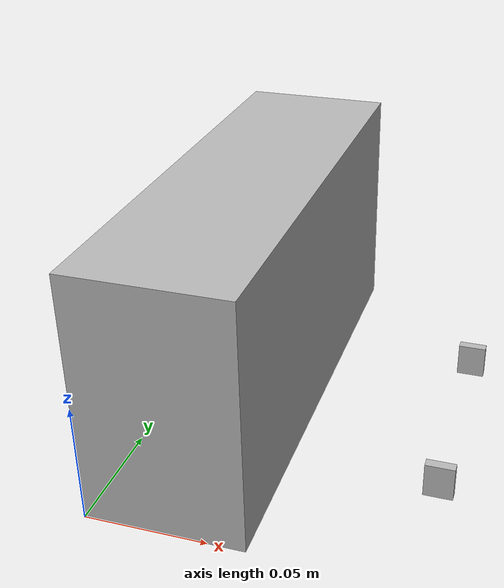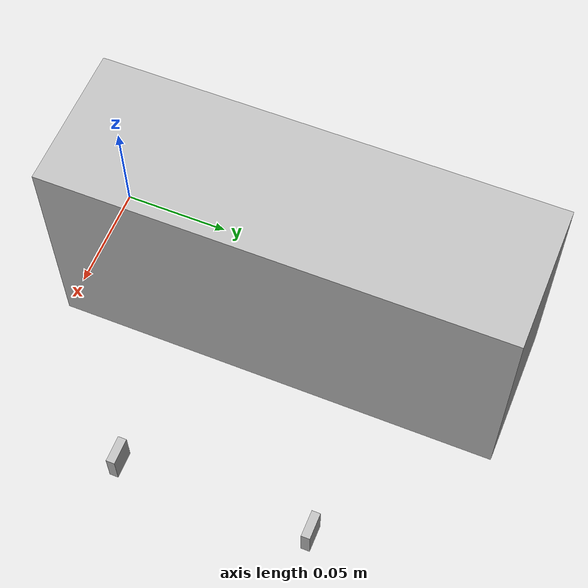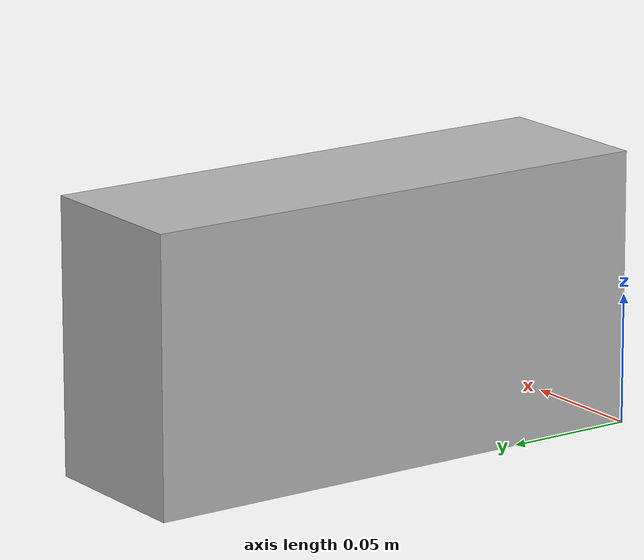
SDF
<?xml version='1.0'?>
<!-- Generated by model.sdf.j2 template - do not edit -->
<sdf version="1.4">
  <model name="kobuki_dock">
    <static>1</static>
    <link name="dock_link">
      <visual name="dock_visual">
        <pose>.0325 .1025 0.0525 0 0 0</pose>
        <plugin name="kobukidockvis" filename="librobot_dock_vis.so" />
        <geometry>
          <box>
            <size>0.065 0.205 0.105</size>
          </box>
        </geometry>
      </visual>
      <collision name="dock_collision">
        <pose>.0325 .1025 0.0525 0 0 0</pose>
        <geometry>
          <box>
            <size>0.065 0.205 0.105</size>
          </box>
        </geometry>
      </collision>
    </link>

    <joint name='charge_pad_left_joint' type='fixed'>
      <parent>dock_link</parent>
      <child>charge_pad_left_link</child>
    </joint>
    <link name='charge_pad_left_link'>
      <pose>0.1263 0.055 .004 0 0 0</pose>
      <visual name="pad_left_visual">
        <geometry>
          <box>
            <size>0.0122 0.004 0.015</size>
          </box>
        </geometry>
      </visual>
      <collision name='charge_pad_left_link_collision'>
        <geometry>
          <box>
            <size>0.0122 0.004 0.015</size>
          </box>
        </geometry>
        <surface>
          <contact>
            <collide_without_contact>1</collide_without_contact>
            <ode/>
          </contact>
        </surface>
      </collision>
    </link>

    <joint name='charge_pad_right_joint' type='fixed'>
      <parent>dock_link</parent>
      <child>charge_pad_right_link</child>
    </joint>
    <link name='charge_pad_right_link'>
      <pose>0.1263 0.145 .004 0 0 0</pose>
      <visual name="pad_right_visual">
        <geometry>
          <box>
            <size>0.0122 0.004 0.015</size>
          </box>
        </geometry>
      </visual>
      <collision name='charge_pad_right_link_collision'>
        <geometry>
          <box>
            <size>0.0122 0.004 0.015</size>
          </box>
        </geometry>
        <surface>
          <contact>
            <collide_without_contact>1</collide_without_contact>
            <ode/>
          </contact>
        </surface>
      </collision>
    </link>

  </model>
</sdf>
